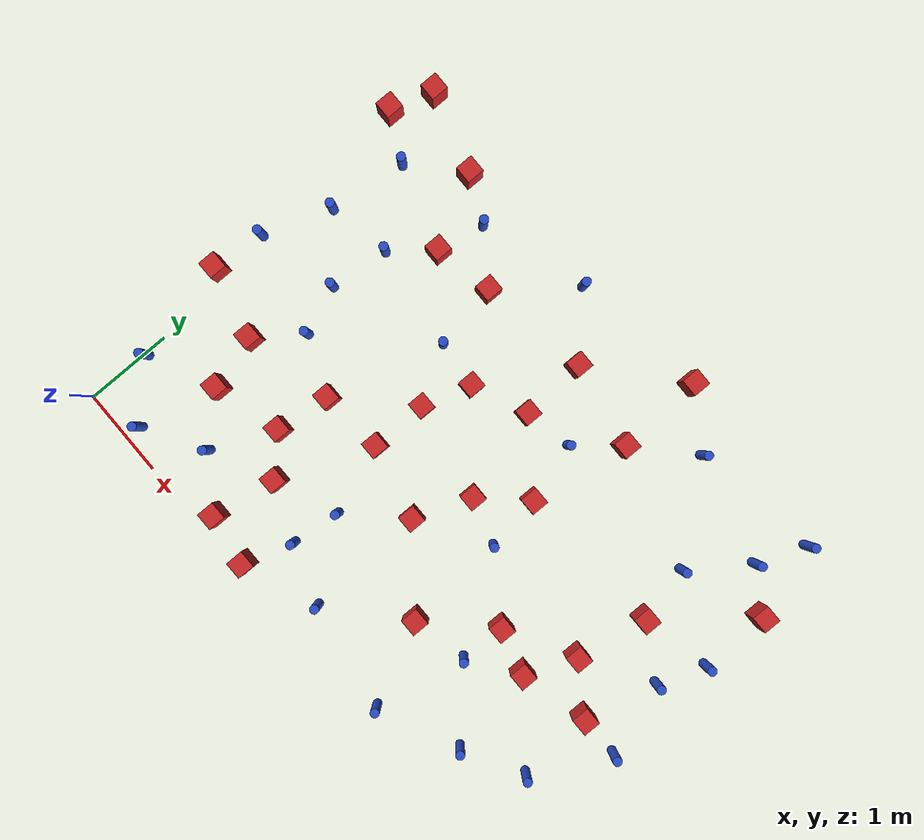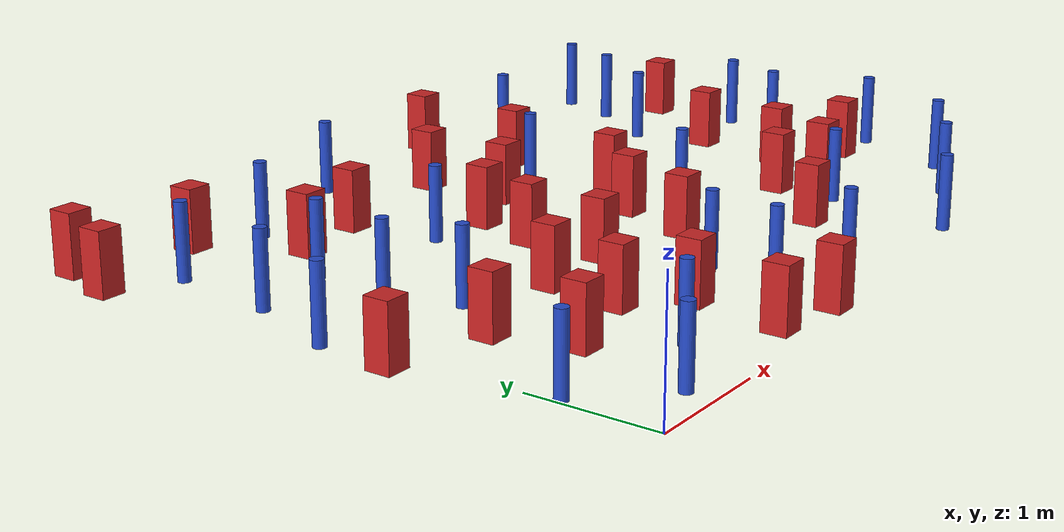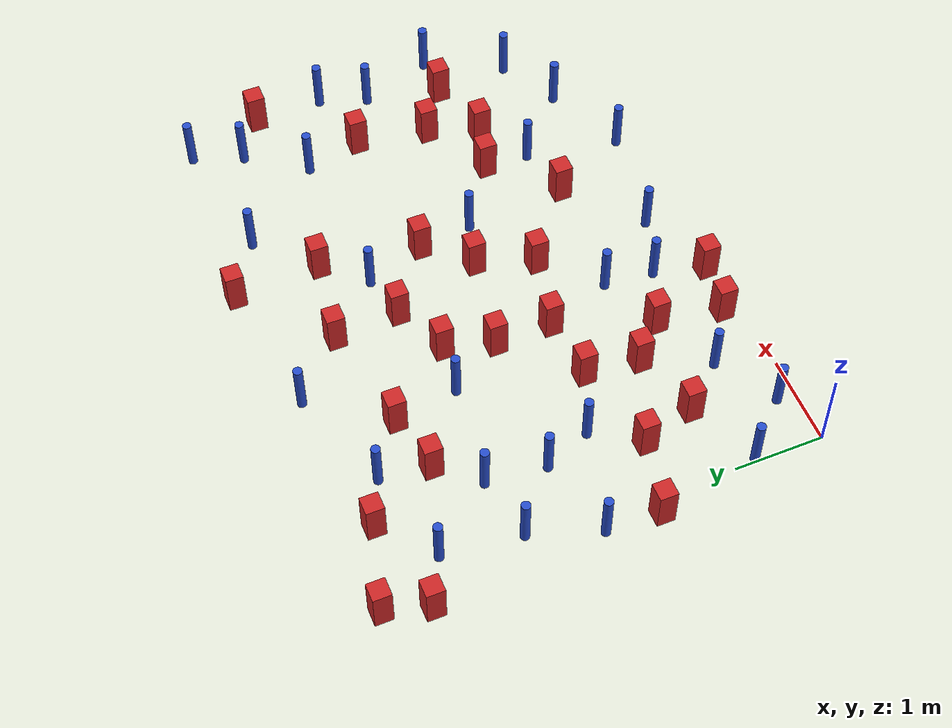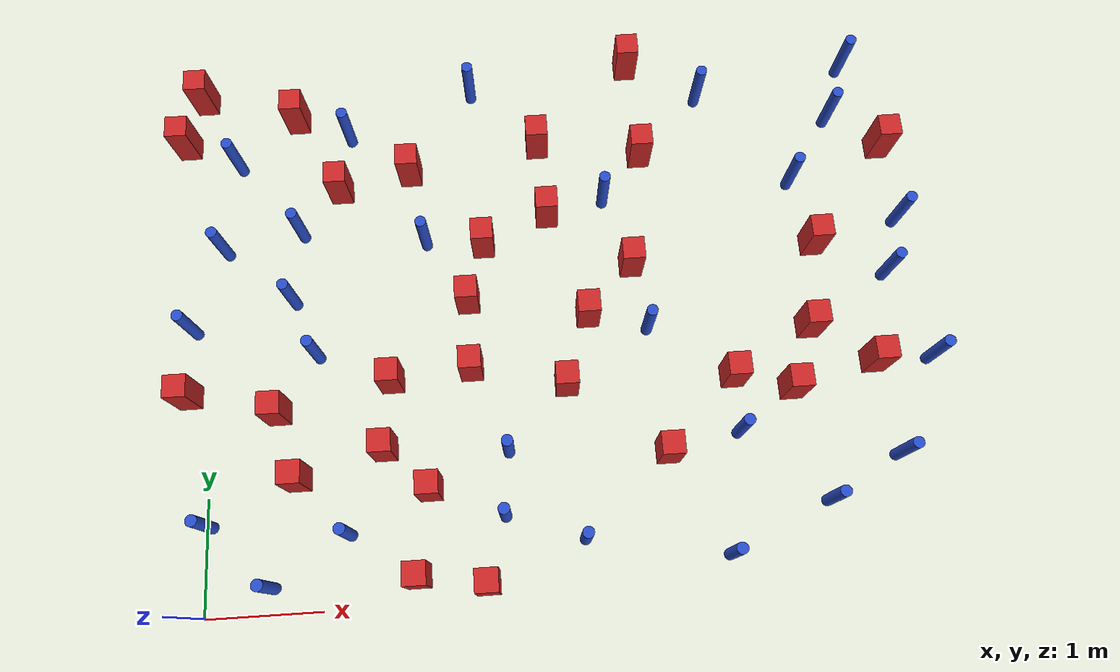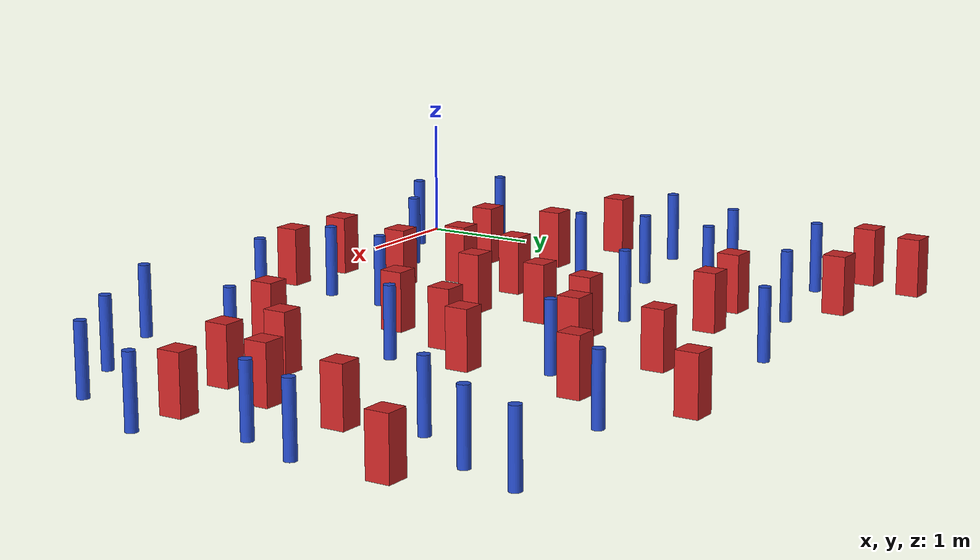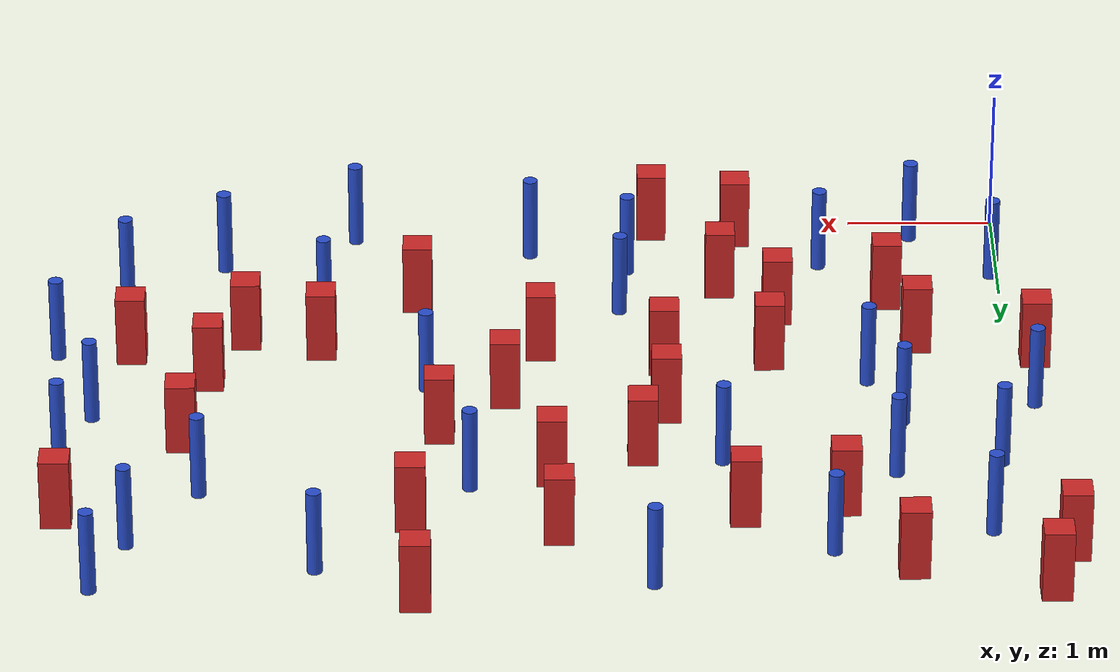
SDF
<sdf version="1.6">
 <model name="dense_51">
  <model name="square_post_obstacle2">
   <static>true</static>
   <pose>3.41418709103 2.44954421194 8.22691968438e-08 7.2212513382e-06 -7.54495500217e-07 2.29674213826e-05</pose>
   <link name="link">
    <pose>0 0 0.25 0 -0 0</pose>
    <inertial>
     <mass>100</mass>
     <inertia>
      <ixx>0.166667</ixx>
      <ixy>0</ixy>
      <ixz>0</ixz>
      <iyy>0.166667</iyy>
      <iyz>0</iyz>
      <izz>0.166667</izz>
     </inertia>
    </inertial>
    <collision name="collision"><geometry><box><size>.2 .2 .5</size></box></geometry></collision>
    <visual name="visual">
     <geometry><box><size>.2 .2 .5</size></box></geometry>
     <material>
      <script><name>Gazebo/Red</name><uri>file://media/materials/scripts/gazebo.material</uri></script>
     </material>
    </visual>
   </link>
  </model>
  <model name="square_post_obstacle8">
   <static>true</static>
   <pose>4.02171252029 1.15391218855 8.22691968438e-08 7.2212513382e-06 -7.54495500217e-07 2.29674213826e-05</pose>
   <link name="link">
    <pose>0 0 0.25 0 -0 0</pose>
    <inertial>
     <mass>100</mass>
     <inertia>
      <ixx>0.166667</ixx>
      <ixy>0</ixy>
      <ixz>0</ixz>
      <iyy>0.166667</iyy>
      <iyz>0</iyz>
      <izz>0.166667</izz>
     </inertia>
    </inertial>
    <collision name="collision"><geometry><box><size>.2 .2 .5</size></box></geometry></collision>
    <visual name="visual">
     <geometry><box><size>.2 .2 .5</size></box></geometry>
     <material>
      <script><name>Gazebo/Red</name><uri>file://media/materials/scripts/gazebo.material</uri></script>
     </material>
    </visual>
   </link>
  </model>
  <model name="square_post_obstacle11">
   <static>true</static>
   <pose>3.17586104604 1.81544225425 8.22691968438e-08 7.2212513382e-06 -7.54495500217e-07 2.29674213826e-05</pose>
   <link name="link">
    <pose>0 0 0.25 0 -0 0</pose>
    <inertial>
     <mass>100</mass>
     <inertia>
      <ixx>0.166667</ixx>
      <ixy>0</ixy>
      <ixz>0</ixz>
      <iyy>0.166667</iyy>
      <iyz>0</iyz>
      <izz>0.166667</izz>
     </inertia>
    </inertial>
    <collision name="collision"><geometry><box><size>.2 .2 .5</size></box></geometry></collision>
    <visual name="visual">
     <geometry><box><size>.2 .2 .5</size></box></geometry>
     <material>
      <script><name>Gazebo/Red</name><uri>file://media/materials/scripts/gazebo.material</uri></script>
     </material>
    </visual>
   </link>
  </model>
  <model name="pole_obstacle9">
   <static>true</static>
   <pose>3.24602878182 0.450953983572 2.88873142074e-08 -9.90536689151e-09 4.60219949006e-07 -1.20965994951e-07</pose>
   <link name="link">
    <pose>0 0 0.3 0 -0 0</pose>
    <inertial>
     <mass>1</mass>
     <inertia><ixx>0.145833</ixx><ixy>0</ixy><ixz>0</ixz><iyy>0.145833</iyy><iyz>0</iyz><izz>0.125</izz></inertia>
    </inertial>
    <collision name="collision">
     <geometry><cylinder><radius>0.05</radius><length>.6</length></cylinder></geometry>
    </collision>
    <visual name="visual">
     <geometry><cylinder><radius>0.05</radius><length>.6</length></cylinder></geometry>
     <material>
      <script><name>Gazebo/Blue</name><uri>file://media/materials/scripts/gazebo.material</uri></script>
     </material>
    </visual>
   </link>
  </model>
  <model name="square_post_obstacle19">
   <static>true</static>
   <pose>3.85054422246 2.91519529944 8.22691968438e-08 7.2212513382e-06 -7.54495500217e-07 2.29674213826e-05</pose>
   <link name="link">
    <pose>0 0 0.25 0 -0 0</pose>
    <inertial>
     <mass>100</mass>
     <inertia>
      <ixx>0.166667</ixx>
      <ixy>0</ixy>
      <ixz>0</ixz>
      <iyy>0.166667</iyy>
      <iyz>0</iyz>
      <izz>0.166667</izz>
     </inertia>
    </inertial>
    <collision name="collision"><geometry><box><size>.2 .2 .5</size></box></geometry></collision>
    <visual name="visual">
     <geometry><box><size>.2 .2 .5</size></box></geometry>
     <material>
      <script><name>Gazebo/Red</name><uri>file://media/materials/scripts/gazebo.material</uri></script>
     </material>
    </visual>
   </link>
  </model>
  <model name="square_post_obstacle20">
   <static>true</static>
   <pose>0.76591102103 4.6098551937 8.22691968438e-08 7.2212513382e-06 -7.54495500217e-07 2.29674213826e-05</pose>
   <link name="link">
    <pose>0 0 0.25 0 -0 0</pose>
    <inertial>
     <mass>100</mass>
     <inertia>
      <ixx>0.166667</ixx>
      <ixy>0</ixy>
      <ixz>0</ixz>
      <iyy>0.166667</iyy>
      <iyz>0</iyz>
      <izz>0.166667</izz>
     </inertia>
    </inertial>
    <collision name="collision"><geometry><box><size>.2 .2 .5</size></box></geometry></collision>
    <visual name="visual">
     <geometry><box><size>.2 .2 .5</size></box></geometry>
     <material>
      <script><name>Gazebo/Red</name><uri>file://media/materials/scripts/gazebo.material</uri></script>
     </material>
    </visual>
   </link>
  </model>
  <model name="pole_obstacle12">
   <static>true</static>
   <pose>5.87228479408 4.29156723029 2.88873142074e-08 -9.90536690842e-09 4.60219948965e-07 -1.20965994976e-07</pose>
   <link name="link">
    <pose>0 0 0.3 0 -0 0</pose>
    <inertial>
     <mass>1</mass>
     <inertia><ixx>0.145833</ixx><ixy>0</ixy><ixz>0</ixz><iyy>0.145833</iyy><iyz>0</iyz><izz>0.125</izz></inertia>
    </inertial>
    <collision name="collision">
     <geometry><cylinder><radius>0.05</radius><length>.6</length></cylinder></geometry>
    </collision>
    <visual name="visual">
     <geometry><cylinder><radius>0.05</radius><length>.6</length></cylinder></geometry>
     <material>
      <script><name>Gazebo/Blue</name><uri>file://media/materials/scripts/gazebo.material</uri></script>
     </material>
    </visual>
   </link>
  </model>
  <model name="pole_obstacle13">
   <static>true</static>
   <pose>6.3707468323 3.20079395214 2.88873142074e-08 -9.90536690245e-09 4.6021994898e-07 -1.20965994966e-07</pose>
   <link name="link">
    <pose>0 0 0.3 0 -0 0</pose>
    <inertial>
     <mass>1</mass>
     <inertia><ixx>0.145833</ixx><ixy>0</ixy><ixz>0</ixz><iyy>0.145833</iyy><iyz>0</iyz><izz>0.125</izz></inertia>
    </inertial>
    <collision name="collision">
     <geometry><cylinder><radius>0.05</radius><length>.6</length></cylinder></geometry>
    </collision>
    <visual name="visual">
     <geometry><cylinder><radius>0.05</radius><length>.6</length></cylinder></geometry>
     <material>
      <script><name>Gazebo/Blue</name><uri>file://media/materials/scripts/gazebo.material</uri></script>
     </material>
    </visual>
   </link>
  </model>
  <model name="pole_obstacle15">
   <static>true</static>
   <pose>6.03215885526 0.99990793642 2.88873142074e-08 -9.90536689329e-09 4.60219949001e-07 -1.20965994952e-07</pose>
   <link name="link">
    <pose>0 0 0.3 0 -0 0</pose>
    <inertial>
     <mass>1</mass>
     <inertia><ixx>0.145833</ixx><ixy>0</ixy><ixz>0</ixz><iyy>0.145833</iyy><iyz>0</iyz><izz>0.125</izz></inertia>
    </inertial>
    <collision name="collision">
     <geometry><cylinder><radius>0.05</radius><length>.6</length></cylinder></geometry>
    </collision>
    <visual name="visual">
     <geometry><cylinder><radius>0.05</radius><length>.6</length></cylinder></geometry>
     <material>
      <script><name>Gazebo/Blue</name><uri>file://media/materials/scripts/gazebo.material</uri></script>
     </material>
    </visual>
   </link>
  </model>
  <model name="pole_obstacle21">
   <static>true</static>
   <pose>1.27009599475 4.378853582 2.88873142074e-08 -9.90536689852e-09 4.60219948989e-07 -1.2096599496e-07</pose>
   <link name="link">
    <pose>0 0 0.3 0 -0 0</pose>
    <inertial>
     <mass>1</mass>
     <inertia><ixx>0.145833</ixx><ixy>0</ixy><ixz>0</ixz><iyy>0.145833</iyy><iyz>0</iyz><izz>0.125</izz></inertia>
    </inertial>
    <collision name="collision">
     <geometry><cylinder><radius>0.05</radius><length>.6</length></cylinder></geometry>
    </collision>
    <visual name="visual">
     <geometry><cylinder><radius>0.05</radius><length>.6</length></cylinder></geometry>
     <material>
      <script><name>Gazebo/Blue</name><uri>file://media/materials/scripts/gazebo.material</uri></script>
     </material>
    </visual>
   </link>
  </model>
  <model name="pole_obstacle24">
   <static>true</static>
   <pose>2.63097724094 1.23968411557 2.88873142074e-08 -9.90536689395e-09 4.60219949e-07 -1.20965994953e-07</pose>
   <link name="link">
    <pose>0 0 0.3 0 -0 0</pose>
    <inertial>
     <mass>1</mass>
     <inertia><ixx>0.145833</ixx><ixy>0</ixy><ixz>0</ixz><iyy>0.145833</iyy><iyz>0</iyz><izz>0.125</izz></inertia>
    </inertial>
    <collision name="collision">
     <geometry><cylinder><radius>0.05</radius><length>.6</length></cylinder></geometry>
    </collision>
    <visual name="visual">
     <geometry><cylinder><radius>0.05</radius><length>.6</length></cylinder></geometry>
     <material>
      <script><name>Gazebo/Blue</name><uri>file://media/materials/scripts/gazebo.material</uri></script>
     </material>
    </visual>
   </link>
  </model>
  <model name="pole_obstacle25">
   <static>true</static>
   <pose>4.46883859706 0.244820934111 2.88873142074e-08 -9.90536689438e-09 4.60219948999e-07 -1.20965994956e-07</pose>
   <link name="link">
    <pose>0 0 0.3 0 -0 0</pose>
    <inertial>
     <mass>1</mass>
     <inertia><ixx>0.145833</ixx><ixy>0</ixy><ixz>0</ixz><iyy>0.145833</iyy><iyz>0</iyz><izz>0.125</izz></inertia>
    </inertial>
    <collision name="collision">
     <geometry><cylinder><radius>0.05</radius><length>.6</length></cylinder></geometry>
    </collision>
    <visual name="visual">
     <geometry><cylinder><radius>0.05</radius><length>.6</length></cylinder></geometry>
     <material>
      <script><name>Gazebo/Blue</name><uri>file://media/materials/scripts/gazebo.material</uri></script>
     </material>
    </visual>
   </link>
  </model>
  <model name="square_post_obstacle32">
   <static>true</static>
   <pose>3.97822362959 4.99952866251 8.22691968438e-08 7.2212513382e-06 -7.54495500217e-07 2.29674213826e-05</pose>
   <link name="link">
    <pose>0 0 0.25 0 -0 0</pose>
    <inertial>
     <mass>100</mass>
     <inertia>
      <ixx>0.166667</ixx>
      <ixy>0</ixy>
      <ixz>0</ixz>
      <iyy>0.166667</iyy>
      <iyz>0</iyz>
      <izz>0.166667</izz>
     </inertia>
    </inertial>
    <collision name="collision"><geometry><box><size>.2 .2 .5</size></box></geometry></collision>
    <visual name="visual">
     <geometry><box><size>.2 .2 .5</size></box></geometry>
     <material>
      <script><name>Gazebo/Red</name><uri>file://media/materials/scripts/gazebo.material</uri></script>
     </material>
    </visual>
   </link>
  </model>
  <model name="square_post_obstacle34">
   <static>true</static>
   <pose>2.49851427638 3.19317485091 8.22691968438e-08 7.2212513382e-06 -7.54495500217e-07 2.29674213826e-05</pose>
   <link name="link">
    <pose>0 0 0.25 0 -0 0</pose>
    <inertial>
     <mass>100</mass>
     <inertia>
      <ixx>0.166667</ixx>
      <ixy>0</ixy>
      <ixz>0</ixz>
      <iyy>0.166667</iyy>
      <iyz>0</iyz>
      <izz>0.166667</izz>
     </inertia>
    </inertial>
    <collision name="collision"><geometry><box><size>.2 .2 .5</size></box></geometry></collision>
    <visual name="visual">
     <geometry><box><size>.2 .2 .5</size></box></geometry>
     <material>
      <script><name>Gazebo/Red</name><uri>file://media/materials/scripts/gazebo.material</uri></script>
     </material>
    </visual>
   </link>
  </model>
  <model name="pole_obstacle30">
   <static>true</static>
   <pose>0.820039946281 3.40295459279 2.88873142074e-08 -9.90536689636e-09 4.60219948994e-07 -1.20965994958e-07</pose>
   <link name="link">
    <pose>0 0 0.3 0 -0 0</pose>
    <inertial>
     <mass>1</mass>
     <inertia><ixx>0.145833</ixx><ixy>0</ixy><ixz>0</ixz><iyy>0.145833</iyy><iyz>0</iyz><izz>0.125</izz></inertia>
    </inertial>
    <collision name="collision">
     <geometry><cylinder><radius>0.05</radius><length>.6</length></cylinder></geometry>
    </collision>
    <visual name="visual">
     <geometry><cylinder><radius>0.05</radius><length>.6</length></cylinder></geometry>
     <material>
      <script><name>Gazebo/Blue</name><uri>file://media/materials/scripts/gazebo.material</uri></script>
     </material>
    </visual>
   </link>
  </model>
  <model name="square_post_obstacle38">
   <static>true</static>
   <pose>-0.285716844559 4.3962112451 8.22691968438e-08 7.2212513382e-06 -7.54495500217e-07 2.29674213826e-05</pose>
   <link name="link">
    <pose>0 0 0.25 0 -0 0</pose>
    <inertial>
     <mass>100</mass>
     <inertia>
      <ixx>0.166667</ixx>
      <ixy>0</ixy>
      <ixz>0</ixz>
      <iyy>0.166667</iyy>
      <iyz>0</iyz>
      <izz>0.166667</izz>
     </inertia>
    </inertial>
    <collision name="collision"><geometry><box><size>.2 .2 .5</size></box></geometry></collision>
    <visual name="visual">
     <geometry><box><size>.2 .2 .5</size></box></geometry>
     <material>
      <script><name>Gazebo/Red</name><uri>file://media/materials/scripts/gazebo.material</uri></script>
     </material>
    </visual>
   </link>
  </model>
  <model name="square_post_obstacle41">
   <static>true</static>
   <pose>1.93724850079 0.960109891192 8.22691968438e-08 7.2212513382e-06 -7.54495500217e-07 2.29674213826e-05</pose>
   <link name="link">
    <pose>0 0 0.25 0 -0 0</pose>
    <inertial>
     <mass>100</mass>
     <inertia>
      <ixx>0.166667</ixx>
      <ixy>0</ixy>
      <ixz>0</ixz>
      <iyy>0.166667</iyy>
      <iyz>0</iyz>
      <izz>0.166667</izz>
     </inertia>
    </inertial>
    <collision name="collision"><geometry><box><size>.2 .2 .5</size></box></geometry></collision>
    <visual name="visual">
     <geometry><box><size>.2 .2 .5</size></box></geometry>
     <material>
      <script><name>Gazebo/Red</name><uri>file://media/materials/scripts/gazebo.material</uri></script>
     </material>
    </visual>
   </link>
  </model>
  <model name="pole_obstacle44">
   <static>true</static>
   <pose>0.751218466088 2.73740976181 2.88873142074e-08 -9.90536689636e-09 4.60219948994e-07 -1.20965994958e-07</pose>
   <link name="link">
    <pose>0 0 0.3 0 -0 0</pose>
    <inertial>
     <mass>1</mass>
     <inertia><ixx>0.145833</ixx><ixy>0</ixy><ixz>0</ixz><iyy>0.145833</iyy><iyz>0</iyz><izz>0.125</izz></inertia>
    </inertial>
    <collision name="collision">
     <geometry><cylinder><radius>0.05</radius><length>.6</length></cylinder></geometry>
    </collision>
    <visual name="visual">
     <geometry><cylinder><radius>0.05</radius><length>.6</length></cylinder></geometry>
     <material>
      <script><name>Gazebo/Blue</name><uri>file://media/materials/scripts/gazebo.material</uri></script>
     </material>
    </visual>
   </link>
  </model>
  <model name="pole_obstacle46">
   <static>true</static>
   <pose>0.0445648369064 0.753632747079 2.88873142074e-08 -9.90536689992e-09 4.60219948986e-07 -1.20965994962e-07</pose>
   <link name="link">
    <pose>0 0 0.3 0 -0 0</pose>
    <inertial>
     <mass>1</mass>
     <inertia><ixx>0.145833</ixx><ixy>0</ixy><ixz>0</ixz><iyy>0.145833</iyy><iyz>0</iyz><izz>0.125</izz></inertia>
    </inertial>
    <collision name="collision">
     <geometry><cylinder><radius>0.05</radius><length>.6</length></cylinder></geometry>
    </collision>
    <visual name="visual">
     <geometry><cylinder><radius>0.05</radius><length>.6</length></cylinder></geometry>
     <material>
      <script><name>Gazebo/Blue</name><uri>file://media/materials/scripts/gazebo.material</uri></script>
     </material>
    </visual>
   </link>
  </model>
  <model name="pole_obstacle64">
   <static>true</static>
   <pose>6.45954698307 1.85123220881 2.88873142074e-08 -9.90536689445e-09 4.60219948999e-07 -1.20965994956e-07</pose>
   <link name="link">
    <pose>0 0 0.3 0 -0 0</pose>
    <inertial>
     <mass>1</mass>
     <inertia><ixx>0.145833</ixx><ixy>0</ixy><ixz>0</ixz><iyy>0.145833</iyy><iyz>0</iyz><izz>0.125</izz></inertia>
    </inertial>
    <collision name="collision">
     <geometry><cylinder><radius>0.05</radius><length>.6</length></cylinder></geometry>
    </collision>
    <visual name="visual">
     <geometry><cylinder><radius>0.05</radius><length>.6</length></cylinder></geometry>
     <material>
      <script><name>Gazebo/Blue</name><uri>file://media/materials/scripts/gazebo.material</uri></script>
     </material>
    </visual>
   </link>
  </model>
  <model name="square_post_obstacle74">
   <static>true</static>
   <pose>6.33999220539 3.98039969989 8.22691968438e-08 7.2212513382e-06 -7.54495500217e-07 2.29674213826e-05</pose>
   <link name="link">
    <pose>0 0 0.25 0 -0 0</pose>
    <inertial>
     <mass>100</mass>
     <inertia>
      <ixx>0.166667</ixx>
      <ixy>0</ixy>
      <ixz>0</ixz>
      <iyy>0.166667</iyy>
      <iyz>0</iyz>
      <izz>0.166667</izz>
     </inertia>
    </inertial>
    <collision name="collision"><geometry><box><size>.2 .2 .5</size></box></geometry></collision>
    <visual name="visual">
     <geometry><box><size>.2 .2 .5</size></box></geometry>
     <material>
      <script><name>Gazebo/Red</name><uri>file://media/materials/scripts/gazebo.material</uri></script>
     </material>
    </visual>
   </link>
  </model>
  <model name="pole_obstacle74">
   <static>true</static>
   <pose>6.08176715338 4.83812957806 2.88873142074e-08 -9.90536690842e-09 4.60219948965e-07 -1.20965994976e-07</pose>
   <link name="link">
    <pose>0 0 0.3 0 -0 0</pose>
    <inertial>
     <mass>1</mass>
     <inertia><ixx>0.145833</ixx><ixy>0</ixy><ixz>0</ixz><iyy>0.145833</iyy><iyz>0</iyz><izz>0.125</izz></inertia>
    </inertial>
    <collision name="collision">
     <geometry><cylinder><radius>0.05</radius><length>.6</length></cylinder></geometry>
    </collision>
    <visual name="visual">
     <geometry><cylinder><radius>0.05</radius><length>.6</length></cylinder></geometry>
     <material>
      <script><name>Gazebo/Blue</name><uri>file://media/materials/scripts/gazebo.material</uri></script>
     </material>
    </visual>
   </link>
  </model>
  <model name="pole_obstacle76">
   <static>true</static>
   <pose>2.57444826513 0.685583261074 2.88873142074e-08 -9.90536689285e-09 4.60219949002e-07 -1.20965994953e-07</pose>
   <link name="link">
    <pose>0 0 0.3 0 -0 0</pose>
    <inertial>
     <mass>1</mass>
     <inertia><ixx>0.145833</ixx><ixy>0</ixy><ixz>0</ixz><iyy>0.145833</iyy><iyz>0</iyz><izz>0.125</izz></inertia>
    </inertial>
    <collision name="collision">
     <geometry><cylinder><radius>0.05</radius><length>.6</length></cylinder></geometry>
    </collision>
    <visual name="visual">
     <geometry><cylinder><radius>0.05</radius><length>.6</length></cylinder></geometry>
     <material>
      <script><name>Gazebo/Blue</name><uri>file://media/materials/scripts/gazebo.material</uri></script>
     </material>
    </visual>
   </link>
  </model>
  <model name="square_post_obstacle78">
   <static>true</static>
   <pose>0.793573176055 1.11742098328 8.22691968438e-08 7.2212513382e-06 -7.54495500217e-07 2.29674213826e-05</pose>
   <link name="link">
    <pose>0 0 0.25 0 -0 0</pose>
    <inertial>
     <mass>100</mass>
     <inertia>
      <ixx>0.166667</ixx>
      <ixy>0</ixy>
      <ixz>0</ixz>
      <iyy>0.166667</iyy>
      <iyz>0</iyz>
      <izz>0.166667</izz>
     </inertia>
    </inertial>
    <collision name="collision"><geometry><box><size>.2 .2 .5</size></box></geometry></collision>
    <visual name="visual">
     <geometry><box><size>.2 .2 .5</size></box></geometry>
     <material>
      <script><name>Gazebo/Red</name><uri>file://media/materials/scripts/gazebo.material</uri></script>
     </material>
    </visual>
   </link>
  </model>
  <model name="pole_obstacle80">
   <static>true</static>
   <pose>1.23912340645 0.612406813624 2.88873142074e-08 -9.90536689692e-09 4.60219948993e-07 -1.20965994958e-07</pose>
   <link name="link">
    <pose>0 0 0.3 0 -0 0</pose>
    <inertial>
     <mass>1</mass>
     <inertia><ixx>0.145833</ixx><ixy>0</ixy><ixz>0</ixz><iyy>0.145833</iyy><iyz>0</iyz><izz>0.125</izz></inertia>
    </inertial>
    <collision name="collision">
     <geometry><cylinder><radius>0.05</radius><length>.6</length></cylinder></geometry>
    </collision>
    <visual name="visual">
     <geometry><cylinder><radius>0.05</radius><length>.6</length></cylinder></geometry>
     <material>
      <script><name>Gazebo/Blue</name><uri>file://media/materials/scripts/gazebo.material</uri></script>
     </material>
    </visual>
   </link>
  </model>
  <model name="pole_obstacle87">
   <static>true</static>
   <pose>5.4259007002 3.65219915211 2.88873142074e-08 -9.90536690245e-09 4.6021994898e-07 -1.20965994966e-07</pose>
   <link name="link">
    <pose>0 0 0.3 0 -0 0</pose>
    <inertial>
     <mass>1</mass>
     <inertia><ixx>0.145833</ixx><ixy>0</ixy><ixz>0</ixz><iyy>0.145833</iyy><iyz>0</iyz><izz>0.125</izz></inertia>
    </inertial>
    <collision name="collision">
     <geometry><cylinder><radius>0.05</radius><length>.6</length></cylinder></geometry>
    </collision>
    <visual name="visual">
     <geometry><cylinder><radius>0.05</radius><length>.6</length></cylinder></geometry>
     <material>
      <script><name>Gazebo/Blue</name><uri>file://media/materials/scripts/gazebo.material</uri></script>
     </material>
    </visual>
   </link>
  </model>
  <model name="pole_obstacle104">
   <static>true</static>
   <pose>0.222548389686 4.13478257113 2.88873142074e-08 -9.90536689491e-09 4.60219948997e-07 -1.20965994955e-07</pose>
   <link name="link">
    <pose>0 0 0.3 0 -0 0</pose>
    <inertial>
     <mass>1</mass>
     <inertia><ixx>0.145833</ixx><ixy>0</ixy><ixz>0</ixz><iyy>0.145833</iyy><iyz>0</iyz><izz>0.125</izz></inertia>
    </inertial>
    <collision name="collision">
     <geometry><cylinder><radius>0.05</radius><length>.6</length></cylinder></geometry>
    </collision>
    <visual name="visual">
     <geometry><cylinder><radius>0.05</radius><length>.6</length></cylinder></geometry>
     <material>
      <script><name>Gazebo/Blue</name><uri>file://media/materials/scripts/gazebo.material</uri></script>
     </material>
    </visual>
   </link>
  </model>
  <model name="pole_obstacle119">
   <static>true</static>
   <pose>6.18392863633 2.67448558779 2.88873142074e-08 -9.90536690245e-09 4.6021994898e-07 -1.20965994966e-07</pose>
   <link name="link">
    <pose>0 0 0.3 0 -0 0</pose>
    <inertial>
     <mass>1</mass>
     <inertia><ixx>0.145833</ixx><ixy>0</ixy><ixz>0</ixz><iyy>0.145833</iyy><iyz>0</iyz><izz>0.125</izz></inertia>
    </inertial>
    <collision name="collision">
     <geometry><cylinder><radius>0.05</radius><length>.6</length></cylinder></geometry>
    </collision>
    <visual name="visual">
     <geometry><cylinder><radius>0.05</radius><length>.6</length></cylinder></geometry>
     <material>
      <script><name>Gazebo/Blue</name><uri>file://media/materials/scripts/gazebo.material</uri></script>
     </material>
    </visual>
   </link>
  </model>
  <model name="square_post_obstacle109">
   <static>true</static>
   <pose>3.10336097169 3.4605759816 8.22691968438e-08 7.2212513382e-06 -7.54495500217e-07 2.29674213826e-05</pose>
   <link name="link">
    <pose>0 0 0.25 0 -0 0</pose>
    <inertial>
     <mass>100</mass>
     <inertia>
      <ixx>0.166667</ixx>
      <ixy>0</ixy>
      <ixz>0</ixz>
      <iyy>0.166667</iyy>
      <iyz>0</iyz>
      <izz>0.166667</izz>
     </inertia>
    </inertial>
    <collision name="collision"><geometry><box><size>.2 .2 .5</size></box></geometry></collision>
    <visual name="visual">
     <geometry><box><size>.2 .2 .5</size></box></geometry>
     <material>
      <script><name>Gazebo/Red</name><uri>file://media/materials/scripts/gazebo.material</uri></script>
     </material>
    </visual>
   </link>
  </model>
  <model name="pole_obstacle123">
   <static>true</static>
   <pose>1.9674485187 3.24825887018 2.88873142074e-08 -9.90536689941e-09 4.60219948987e-07 -1.20965994961e-07</pose>
   <link name="link">
    <pose>0 0 0.3 0 -0 0</pose>
    <inertial>
     <mass>1</mass>
     <inertia><ixx>0.145833</ixx><ixy>0</ixy><ixz>0</ixz><iyy>0.145833</iyy><iyz>0</iyz><izz>0.125</izz></inertia>
    </inertial>
    <collision name="collision">
     <geometry><cylinder><radius>0.05</radius><length>.6</length></cylinder></geometry>
    </collision>
    <visual name="visual">
     <geometry><cylinder><radius>0.05</radius><length>.6</length></cylinder></geometry>
     <material>
      <script><name>Gazebo/Blue</name><uri>file://media/materials/scripts/gazebo.material</uri></script>
     </material>
    </visual>
   </link>
  </model>
  <model name="square_post_obstacle120">
   <static>true</static>
   <pose>1.83925740022 3.97344979141 8.22691968438e-08 7.2212513382e-06 -7.54495500217e-07 2.29674213826e-05</pose>
   <link name="link">
    <pose>0 0 0.25 0 -0 0</pose>
    <inertial>
     <mass>100</mass>
     <inertia>
      <ixx>0.166667</ixx>
      <ixy>0</ixy>
      <ixz>0</ixz>
      <iyy>0.166667</iyy>
      <iyz>0</iyz>
      <izz>0.166667</izz>
     </inertia>
    </inertial>
    <collision name="collision"><geometry><box><size>.2 .2 .5</size></box></geometry></collision>
    <visual name="visual">
     <geometry><box><size>.2 .2 .5</size></box></geometry>
     <material>
      <script><name>Gazebo/Red</name><uri>file://media/materials/scripts/gazebo.material</uri></script>
     </material>
    </visual>
   </link>
  </model>
  <model name="square_post_obstacle122">
   <static>true</static>
   <pose>3.05649690263 4.18964386135 8.22691968438e-08 7.2212513382e-06 -7.54495500217e-07 2.29674213826e-05</pose>
   <link name="link">
    <pose>0 0 0.25 0 -0 0</pose>
    <inertial>
     <mass>100</mass>
     <inertia>
      <ixx>0.166667</ixx>
      <ixy>0</ixy>
      <ixz>0</ixz>
      <iyy>0.166667</iyy>
      <iyz>0</iyz>
      <izz>0.166667</izz>
     </inertia>
    </inertial>
    <collision name="collision"><geometry><box><size>.2 .2 .5</size></box></geometry></collision>
    <visual name="visual">
     <geometry><box><size>.2 .2 .5</size></box></geometry>
     <material>
      <script><name>Gazebo/Red</name><uri>file://media/materials/scripts/gazebo.material</uri></script>
     </material>
    </visual>
   </link>
  </model>
  <model name="square_post_obstacle124">
   <static>true</static>
   <pose>5.5654410001 3.02153794793 8.22691968438e-08 7.2212513382e-06 -7.54495500217e-07 2.29674213826e-05</pose>
   <link name="link">
    <pose>0 0 0.25 0 -0 0</pose>
    <inertial>
     <mass>100</mass>
     <inertia>
      <ixx>0.166667</ixx>
      <ixy>0</ixy>
      <ixz>0</ixz>
      <iyy>0.166667</iyy>
      <iyz>0</iyz>
      <izz>0.166667</izz>
     </inertia>
    </inertial>
    <collision name="collision"><geometry><box><size>.2 .2 .5</size></box></geometry></collision>
    <visual name="visual">
     <geometry><box><size>.2 .2 .5</size></box></geometry>
     <material>
      <script><name>Gazebo/Red</name><uri>file://media/materials/scripts/gazebo.material</uri></script>
     </material>
    </visual>
   </link>
  </model>
  <model name="square_post_obstacle125">
   <static>true</static>
   <pose>2.33424580545 2.65014800814 8.22691968438e-08 7.2212513382e-06 -7.54495500217e-07 2.29674213826e-05</pose>
   <link name="link">
    <pose>0 0 0.25 0 -0 0</pose>
    <inertial>
     <mass>100</mass>
     <inertia>
      <ixx>0.166667</ixx>
      <ixy>0</ixy>
      <ixz>0</ixz>
      <iyy>0.166667</iyy>
      <iyz>0</iyz>
      <izz>0.166667</izz>
     </inertia>
    </inertial>
    <collision name="collision"><geometry><box><size>.2 .2 .5</size></box></geometry></collision>
    <visual name="visual">
     <geometry><box><size>.2 .2 .5</size></box></geometry>
     <material>
      <script><name>Gazebo/Red</name><uri>file://media/materials/scripts/gazebo.material</uri></script>
     </material>
    </visual>
   </link>
  </model>
  <model name="square_post_obstacle127">
   <static>true</static>
   <pose>1.17988550281 3.83633537052 8.22691968438e-08 7.2212513382e-06 -7.54495500217e-07 2.29674213826e-05</pose>
   <link name="link">
    <pose>0 0 0.25 0 -0 0</pose>
    <inertial>
     <mass>100</mass>
     <inertia>
      <ixx>0.166667</ixx>
      <ixy>0</ixy>
      <ixz>0</ixz>
      <iyy>0.166667</iyy>
      <iyz>0</iyz>
      <izz>0.166667</izz>
     </inertia>
    </inertial>
    <collision name="collision"><geometry><box><size>.2 .2 .5</size></box></geometry></collision>
    <visual name="visual">
     <geometry><box><size>.2 .2 .5</size></box></geometry>
     <material>
      <script><name>Gazebo/Red</name><uri>file://media/materials/scripts/gazebo.material</uri></script>
     </material>
    </visual>
   </link>
  </model>
  <model name="pole_obstacle144">
   <static>true</static>
   <pose>0.964892750727 2.21010918374 2.88873142074e-08 -9.90536689802e-09 4.6021994899e-07 -1.2096599496e-07</pose>
   <link name="link">
    <pose>0 0 0.3 0 -0 0</pose>
    <inertial>
     <mass>1</mass>
     <inertia><ixx>0.145833</ixx><ixy>0</ixy><ixz>0</ixz><iyy>0.145833</iyy><iyz>0</iyz><izz>0.125</izz></inertia>
    </inertial>
    <collision name="collision">
     <geometry><cylinder><radius>0.05</radius><length>.6</length></cylinder></geometry>
    </collision>
    <visual name="visual">
     <geometry><cylinder><radius>0.05</radius><length>.6</length></cylinder></geometry>
     <material>
      <script><name>Gazebo/Blue</name><uri>file://media/materials/scripts/gazebo.material</uri></script>
     </material>
    </visual>
   </link>
  </model>
  <model name="square_post_obstacle136">
   <static>true</static>
   <pose>4.66686483061 1.80032182734 8.22691968438e-08 7.2212513382e-06 -7.54495500217e-07 2.29674213826e-05</pose>
   <link name="link">
    <pose>0 0 0.25 0 -0 0</pose>
    <inertial>
     <mass>100</mass>
     <inertia>
      <ixx>0.166667</ixx>
      <ixy>0</ixy>
      <ixz>0</ixz>
      <iyy>0.166667</iyy>
      <iyz>0</iyz>
      <izz>0.166667</izz>
     </inertia>
    </inertial>
    <collision name="collision"><geometry><box><size>.2 .2 .5</size></box></geometry></collision>
    <visual name="visual">
     <geometry><box><size>.2 .2 .5</size></box></geometry>
     <material>
      <script><name>Gazebo/Red</name><uri>file://media/materials/scripts/gazebo.material</uri></script>
     </material>
    </visual>
   </link>
  </model>
  <model name="square_post_obstacle138">
   <static>true</static>
   <pose>2.39888275156 0.139164505341 8.22691968438e-08 7.2212513382e-06 -7.54495500217e-07 2.29674213826e-05</pose>
   <link name="link">
    <pose>0 0 0.25 0 -0 0</pose>
    <inertial>
     <mass>100</mass>
     <inertia>
      <ixx>0.166667</ixx>
      <ixy>0</ixy>
      <ixz>0</ixz>
      <iyy>0.166667</iyy>
      <iyz>0</iyz>
      <izz>0.166667</izz>
     </inertia>
    </inertial>
    <collision name="collision"><geometry><box><size>.2 .2 .5</size></box></geometry></collision>
    <visual name="visual">
     <geometry><box><size>.2 .2 .5</size></box></geometry>
     <material>
      <script><name>Gazebo/Red</name><uri>file://media/materials/scripts/gazebo.material</uri></script>
     </material>
    </visual>
   </link>
  </model>
  <model name="pole_obstacle149">
   <static>true</static>
   <pose>3.9464605849 2.2897985535 2.88873142074e-08 -9.90536690232e-09 4.6021994898e-07 -1.20965994968e-07</pose>
   <link name="link">
    <pose>0 0 0.3 0 -0 0</pose>
    <inertial>
     <mass>1</mass>
     <inertia><ixx>0.145833</ixx><ixy>0</ixy><ixz>0</ixz><iyy>0.145833</iyy><iyz>0</iyz><izz>0.125</izz></inertia>
    </inertial>
    <collision name="collision">
     <geometry><cylinder><radius>0.05</radius><length>.6</length></cylinder></geometry>
    </collision>
    <visual name="visual">
     <geometry><cylinder><radius>0.05</radius><length>.6</length></cylinder></geometry>
     <material>
      <script><name>Gazebo/Blue</name><uri>file://media/materials/scripts/gazebo.material</uri></script>
     </material>
    </visual>
   </link>
  </model>
  <model name="square_post_obstacle144">
   <static>true</static>
   <pose>4.02556832011 4.03264601311 8.22691968438e-08 7.22125133819e-06 -7.54495500217e-07 2.29674213826e-05</pose>
   <link name="link">
    <pose>0 0 0.25 0 -0 0</pose>
    <inertial>
     <mass>100</mass>
     <inertia>
      <ixx>0.166667</ixx>
      <ixy>0</ixy>
      <ixz>0</ixz>
      <iyy>0.166667</iyy>
      <iyz>0</iyz>
      <izz>0.166667</izz>
     </inertia>
    </inertial>
    <collision name="collision"><geometry><box><size>.2 .2 .5</size></box></geometry></collision>
    <visual name="visual">
     <geometry><box><size>.2 .2 .5</size></box></geometry>
     <material>
      <script><name>Gazebo/Red</name><uri>file://media/materials/scripts/gazebo.material</uri></script>
     </material>
    </visual>
   </link>
  </model>
  <model name="square_post_obstacle149">
   <static>true</static>
   <pose>5.41634141831 2.21868008483 8.22691968438e-08 7.2212513382e-06 -7.54495500217e-07 2.29674213826e-05</pose>
   <link name="link">
    <pose>0 0 0.25 0 -0 0</pose>
    <inertial>
     <mass>100</mass>
     <inertia>
      <ixx>0.166667</ixx>
      <ixy>0</ixy>
      <ixz>0</ixz>
      <iyy>0.166667</iyy>
      <iyz>0</iyz>
      <izz>0.166667</izz>
     </inertia>
    </inertial>
    <collision name="collision"><geometry><box><size>.2 .2 .5</size></box></geometry></collision>
    <visual name="visual">
     <geometry><box><size>.2 .2 .5</size></box></geometry>
     <material>
      <script><name>Gazebo/Red</name><uri>file://media/materials/scripts/gazebo.material</uri></script>
     </material>
    </visual>
   </link>
  </model>
  <model name="square_post_obstacle158">
   <static>true</static>
   <pose>2.33921286921 2.01029641983 8.22691968438e-08 7.2212513382e-06 -7.54495500217e-07 2.29674213826e-05</pose>
   <link name="link">
    <pose>0 0 0.25 0 -0 0</pose>
    <inertial>
     <mass>100</mass>
     <inertia>
      <ixx>0.166667</ixx>
      <ixy>0</ixy>
      <ixz>0</ixz>
      <iyy>0.166667</iyy>
      <iyz>0</iyz>
      <izz>0.166667</izz>
     </inertia>
    </inertial>
    <collision name="collision"><geometry><box><size>.2 .2 .5</size></box></geometry></collision>
    <visual name="visual">
     <geometry><box><size>.2 .2 .5</size></box></geometry>
     <material>
      <script><name>Gazebo/Red</name><uri>file://media/materials/scripts/gazebo.material</uri></script>
     </material>
    </visual>
   </link>
  </model>
  <model name="pole_obstacle167">
   <static>true</static>
   <pose>2.44366150699 4.78167556485 2.88873142074e-08 -9.90536689859e-09 4.60219948989e-07 -1.20965994961e-07</pose>
   <link name="link">
    <pose>0 0 0.3 0 -0 0</pose>
    <inertial>
     <mass>1</mass>
     <inertia><ixx>0.145833</ixx><ixy>0</ixy><ixz>0</ixz><iyy>0.145833</iyy><iyz>0</iyz><izz>0.125</izz></inertia>
    </inertial>
    <collision name="collision">
     <geometry><cylinder><radius>0.05</radius><length>.6</length></cylinder></geometry>
    </collision>
    <visual name="visual">
     <geometry><cylinder><radius>0.05</radius><length>.6</length></cylinder></geometry>
     <material>
      <script><name>Gazebo/Blue</name><uri>file://media/materials/scripts/gazebo.material</uri></script>
     </material>
    </visual>
   </link>
  </model>
  <model name="pole_obstacle180">
   <static>true</static>
   <pose>0.116098580354 3.26587579567 2.88873142074e-08 -9.905366898e-09 4.6021994899e-07 -1.2096599496e-07</pose>
   <link name="link">
    <pose>0 0 0.3 0 -0 0</pose>
    <inertial>
     <mass>1</mass>
     <inertia><ixx>0.145833</ixx><ixy>0</ixy><ixz>0</ixz><iyy>0.145833</iyy><iyz>0</iyz><izz>0.125</izz></inertia>
    </inertial>
    <collision name="collision">
     <geometry><cylinder><radius>0.05</radius><length>.6</length></cylinder></geometry>
    </collision>
    <visual name="visual">
     <geometry><cylinder><radius>0.05</radius><length>.6</length></cylinder></geometry>
     <material>
      <script><name>Gazebo/Blue</name><uri>file://media/materials/scripts/gazebo.material</uri></script>
     </material>
    </visual>
   </link>
  </model>
  <model name="square_post_obstacle176">
   <static>true</static>
   <pose>1.62308425281 1.94392637985 8.22691968438e-08 7.2212513382e-06 -7.54495500217e-07 2.29674213826e-05</pose>
   <link name="link">
    <pose>0 0 0.25 0 -0 0</pose>
    <inertial>
     <mass>100</mass>
     <inertia>
      <ixx>0.166667</ixx>
      <ixy>0</ixy>
      <ixz>0</ixz>
      <iyy>0.166667</iyy>
      <iyz>0</iyz>
      <izz>0.166667</izz>
     </inertia>
    </inertial>
    <collision name="collision"><geometry><box><size>.2 .2 .5</size></box></geometry></collision>
    <visual name="visual">
     <geometry><box><size>.2 .2 .5</size></box></geometry>
     <material>
      <script><name>Gazebo/Red</name><uri>file://media/materials/scripts/gazebo.material</uri></script>
     </material>
    </visual>
   </link>
  </model>
  <model name="square_post_obstacle198">
   <static>true</static>
   <pose>5.95644622413 1.85828041781 8.22691968438e-08 7.2212513382e-06 -7.54495500217e-07 2.29674213826e-05</pose>
   <link name="link">
    <pose>0 0 0.25 0 -0 0</pose>
    <inertial>
     <mass>100</mass>
     <inertia>
      <ixx>0.166667</ixx>
      <ixy>0</ixy>
      <ixz>0</ixz>
      <iyy>0.166667</iyy>
      <iyz>0</iyz>
      <izz>0.166667</izz>
     </inertia>
    </inertial>
    <collision name="collision"><geometry><box><size>.2 .2 .5</size></box></geometry></collision>
    <visual name="visual">
     <geometry><box><size>.2 .2 .5</size></box></geometry>
     <material>
      <script><name>Gazebo/Red</name><uri>file://media/materials/scripts/gazebo.material</uri></script>
     </material>
    </visual>
   </link>
  </model>
  <model name="square_post_obstacle203">
   <static>true</static>
   <pose>-0.185989979648 1.91443852567 8.22691968438e-08 7.2212513382e-06 -7.54495500217e-07 2.29674213826e-05</pose>
   <link name="link">
    <pose>0 0 0.25 0 -0 0</pose>
    <inertial>
     <mass>100</mass>
     <inertia>
      <ixx>0.166667</ixx>
      <ixy>0</ixy>
      <ixz>0</ixz>
      <iyy>0.166667</iyy>
      <iyz>0</iyz>
      <izz>0.166667</izz>
     </inertia>
    </inertial>
    <collision name="collision"><geometry><box><size>.2 .2 .5</size></box></geometry></collision>
    <visual name="visual">
     <geometry><box><size>.2 .2 .5</size></box></geometry>
     <material>
      <script><name>Gazebo/Red</name><uri>file://media/materials/scripts/gazebo.material</uri></script>
     </material>
    </visual>
   </link>
  </model>
  <model name="pole_obstacle192">
   <static>true</static>
   <pose>4.63505616414 4.60028844216 2.88873142074e-08 -9.90536690842e-09 4.60219948965e-07 -1.20965994976e-07</pose>
   <link name="link">
    <pose>0 0 0.3 0 -0 0</pose>
    <inertial>
     <mass>1</mass>
     <inertia><ixx>0.145833</ixx><ixy>0</ixy><ixz>0</ixz><iyy>0.145833</iyy><iyz>0</iyz><izz>0.125</izz></inertia>
    </inertial>
    <collision name="collision">
     <geometry><cylinder><radius>0.05</radius><length>.6</length></cylinder></geometry>
    </collision>
    <visual name="visual">
     <geometry><cylinder><radius>0.05</radius><length>.6</length></cylinder></geometry>
     <material>
      <script><name>Gazebo/Blue</name><uri>file://media/materials/scripts/gazebo.material</uri></script>
     </material>
    </visual>
   </link>
  </model>
  <model name="pole_obstacle197">
   <static>true</static>
   <pose>3.6416141335 3.57664966236 2.88873142074e-08 -9.90536690232e-09 4.6021994898e-07 -1.20965994968e-07</pose>
   <link name="link">
    <pose>0 0 0.3 0 -0 0</pose>
    <inertial>
     <mass>1</mass>
     <inertia><ixx>0.145833</ixx><ixy>0</ixy><ixz>0</ixz><iyy>0.145833</iyy><iyz>0</iyz><izz>0.125</izz></inertia>
    </inertial>
    <collision name="collision">
     <geometry><cylinder><radius>0.05</radius><length>.6</length></cylinder></geometry>
    </collision>
    <visual name="visual">
     <geometry><cylinder><radius>0.05</radius><length>.6</length></cylinder></geometry>
     <material>
      <script><name>Gazebo/Blue</name><uri>file://media/materials/scripts/gazebo.material</uri></script>
     </material>
    </visual>
   </link>
  </model>
  <model name="square_post_obstacle204">
   <static>true</static>
   <pose>1.8156356648 0.232171752756 8.22691968438e-08 7.22125133819e-06 -7.54495500217e-07 2.29674213826e-05</pose>
   <link name="link">
    <pose>0 0 0.25 0 -0 0</pose>
    <inertial>
     <mass>100</mass>
     <inertia>
      <ixx>0.166667</ixx>
      <ixy>0</ixy>
      <ixz>0</ixz>
      <iyy>0.166667</iyy>
      <iyz>0</iyz>
      <izz>0.166667</izz>
     </inertia>
    </inertial>
    <collision name="collision"><geometry><box><size>.2 .2 .5</size></box></geometry></collision>
    <visual name="visual">
     <geometry><box><size>.2 .2 .5</size></box></geometry>
     <material>
      <script><name>Gazebo/Red</name><uri>file://media/materials/scripts/gazebo.material</uri></script>
     </material>
    </visual>
   </link>
  </model>
  <model name="pole_obstacle198">
   <static>true</static>
   <pose>-0.150952202035 2.51015461175 2.88873142074e-08 -9.9053669244e-09 4.60219948928e-07 -1.20965994988e-07</pose>
   <link name="link">
    <pose>0 0 0.3 0 -0 0</pose>
    <inertial>
     <mass>1</mass>
     <inertia><ixx>0.145833</ixx><ixy>0</ixy><ixz>0</ixz><iyy>0.145833</iyy><iyz>0</iyz><izz>0.125</izz></inertia>
    </inertial>
    <collision name="collision">
     <geometry><cylinder><radius>0.05</radius><length>.6</length></cylinder></geometry>
    </collision>
    <visual name="visual">
     <geometry><cylinder><radius>0.05</radius><length>.6</length></cylinder></geometry>
     <material>
      <script><name>Gazebo/Blue</name><uri>file://media/materials/scripts/gazebo.material</uri></script>
     </material>
    </visual>
   </link>
  </model>
  <model name="pole_obstacle199">
   <static>true</static>
   <pose>4.6617778326 1.28319413861 2.88873142074e-08 -9.90536689445e-09 4.60219948999e-07 -1.20965994956e-07</pose>
   <link name="link">
    <pose>0 0 0.3 0 -0 0</pose>
    <inertial>
     <mass>1</mass>
     <inertia><ixx>0.145833</ixx><ixy>0</ixy><ixz>0</ixz><iyy>0.145833</iyy><iyz>0</iyz><izz>0.125</izz></inertia>
    </inertial>
    <collision name="collision">
     <geometry><cylinder><radius>0.05</radius><length>.6</length></cylinder></geometry>
    </collision>
    <visual name="visual">
     <geometry><cylinder><radius>0.05</radius><length>.6</length></cylinder></geometry>
     <material>
      <script><name>Gazebo/Blue</name><uri>file://media/materials/scripts/gazebo.material</uri></script>
     </material>
    </visual>
   </link>
  </model>
  <model name="pole_obstacle200">
   <static>true</static>
   <pose>5.36936780648 0.643348356029 2.88873142074e-08 -9.90536689837e-09 4.60219948989e-07 -1.2096599496e-07</pose>
   <link name="link">
    <pose>0 0 0.3 0 -0 0</pose>
    <inertial>
     <mass>1</mass>
     <inertia><ixx>0.145833</ixx><ixy>0</ixy><ixz>0</ixz><iyy>0.145833</iyy><iyz>0</iyz><izz>0.125</izz></inertia>
    </inertial>
    <collision name="collision">
     <geometry><cylinder><radius>0.05</radius><length>.6</length></cylinder></geometry>
    </collision>
    <visual name="visual">
     <geometry><cylinder><radius>0.05</radius><length>.6</length></cylinder></geometry>
     <material>
      <script><name>Gazebo/Blue</name><uri>file://media/materials/scripts/gazebo.material</uri></script>
     </material>
    </visual>
   </link>
  </model>
  <model name="pole_obstacle205">
   <static>true</static>
   <pose>0.586841437359 0.212385678331 2.88873142074e-08 -9.9053668971e-09 4.60219948992e-07 -1.20965994957e-07</pose>
   <link name="link">
    <pose>0 0 0.3 0 -0 0</pose>
    <inertial>
     <mass>1</mass>
     <inertia><ixx>0.145833</ixx><ixy>0</ixy><ixz>0</ixz><iyy>0.145833</iyy><iyz>0</iyz><izz>0.125</izz></inertia>
    </inertial>
    <collision name="collision">
     <geometry><cylinder><radius>0.05</radius><length>.6</length></cylinder></geometry>
    </collision>
    <visual name="visual">
     <geometry><cylinder><radius>0.05</radius><length>.6</length></cylinder></geometry>
     <material>
      <script><name>Gazebo/Blue</name><uri>file://media/materials/scripts/gazebo.material</uri></script>
     </material>
    </visual>
   </link>
  </model>
  <model name="square_post_obstacle209">
   <static>true</static>
   <pose>0.613533772101 1.71774935216 8.22691968438e-08 7.2212513382e-06 -7.54495500217e-07 2.29674213826e-05</pose>
   <link name="link">
    <pose>0 0 0.25 0 -0 0</pose>
    <inertial>
     <mass>100</mass>
     <inertia>
      <ixx>0.166667</ixx>
      <ixy>0</ixy>
      <ixz>0</ixz>
      <iyy>0.166667</iyy>
      <iyz>0</iyz>
      <izz>0.166667</izz>
     </inertia>
    </inertial>
    <collision name="collision"><geometry><box><size>.2 .2 .5</size></box></geometry></collision>
    <visual name="visual">
     <geometry><box><size>.2 .2 .5</size></box></geometry>
     <material>
      <script><name>Gazebo/Red</name><uri>file://media/materials/scripts/gazebo.material</uri></script>
     </material>
    </visual>
   </link>
  </model>
  <model name="square_post_obstacle228">
   <static>true</static>
   <pose>5.18440003262 1.65928996466 8.22691968438e-08 7.2212513382e-06 -7.54495500217e-07 2.29674213826e-05</pose>
   <link name="link">
    <pose>0 0 0.25 0 -0 0</pose>
    <inertial>
     <mass>100</mass>
     <inertia>
      <ixx>0.166667</ixx>
      <ixy>0</ixy>
      <ixz>0</ixz>
      <iyy>0.166667</iyy>
      <iyz>0</iyz>
      <izz>0.166667</izz>
     </inertia>
    </inertial>
    <collision name="collision"><geometry><box><size>.2 .2 .5</size></box></geometry></collision>
    <visual name="visual">
     <geometry><box><size>.2 .2 .5</size></box></geometry>
     <material>
      <script><name>Gazebo/Red</name><uri>file://media/materials/scripts/gazebo.material</uri></script>
     </material>
    </visual>
   </link>
  </model>
  <model name="square_post_obstacle247">
   <static>true</static>
   <pose>-0.134082967378 4.87597996466 8.22691968438e-08 7.2212513382e-06 -7.54495500217e-07 2.29674213826e-05</pose>
   <link name="link">
    <pose>0 0 0.25 0 -0 0</pose>
    <inertial>
     <mass>100</mass>
     <inertia>
      <ixx>0.166667</ixx>
      <ixy>0</ixy>
      <ixz>0</ixz>
      <iyy>0.166667</iyy>
      <iyz>0</iyz>
      <izz>0.166667</izz>
     </inertia>
    </inertial>
    <collision name="collision"><geometry><box><size>.2 .2 .5</size></box></geometry></collision>
    <visual name="visual">
     <geometry><box><size>.2 .2 .5</size></box></geometry>
     <material>
      <script><name>Gazebo/Red</name><uri>file://media/materials/scripts/gazebo.material</uri></script>
     </material>
    </visual>
   </link>
  </model>
  <model name="square_post_obstacle249">
   <static>true</static>
   <pose>1.55144003262 1.33428996466 8.22691968438e-08 7.22125133819e-06 -7.54495500217e-07 2.29674213826e-05</pose>
   <link name="link">
    <pose>0 0 0.25 0 -0 0</pose>
    <inertial>
     <mass>100</mass>
     <inertia>
      <ixx>0.166667</ixx>
      <ixy>0</ixy>
      <ixz>0</ixz>
      <iyy>0.166667</iyy>
      <iyz>0</iyz>
      <izz>0.166667</izz>
     </inertia>
    </inertial>
    <collision name="collision"><geometry><box><size>.2 .2 .5</size></box></geometry></collision>
    <visual name="visual">
     <geometry><box><size>.2 .2 .5</size></box></geometry>
     <material>
      <script><name>Gazebo/Red</name><uri>file://media/materials/scripts/gazebo.material</uri></script>
     </material>
    </visual>
   </link>
  </model>
 </model>
</sdf>
